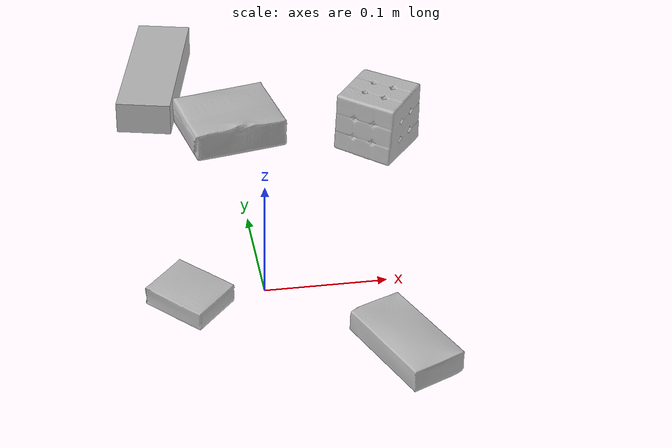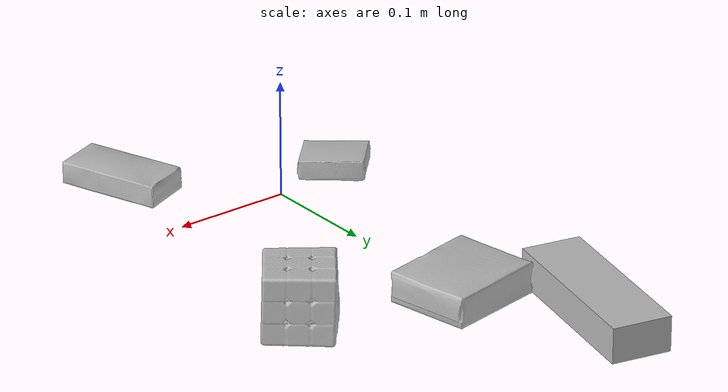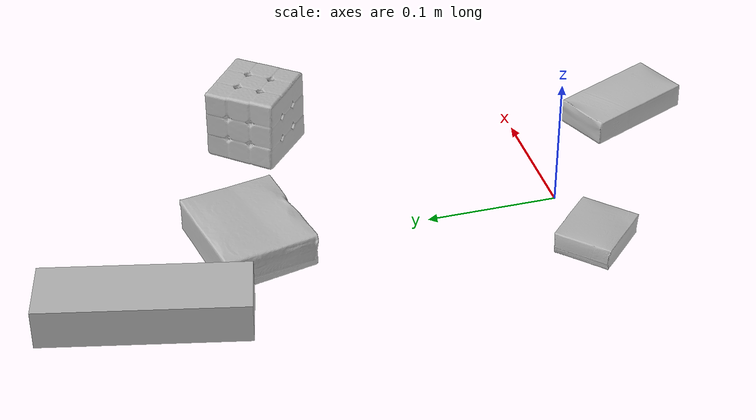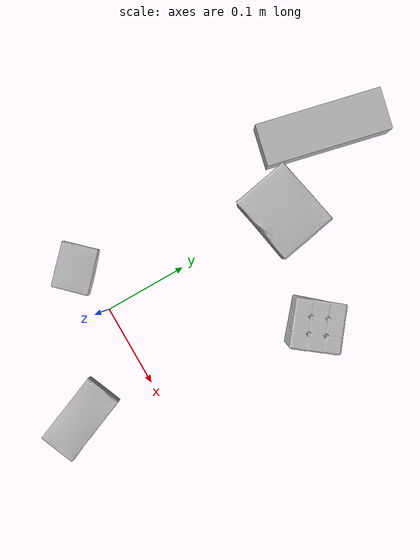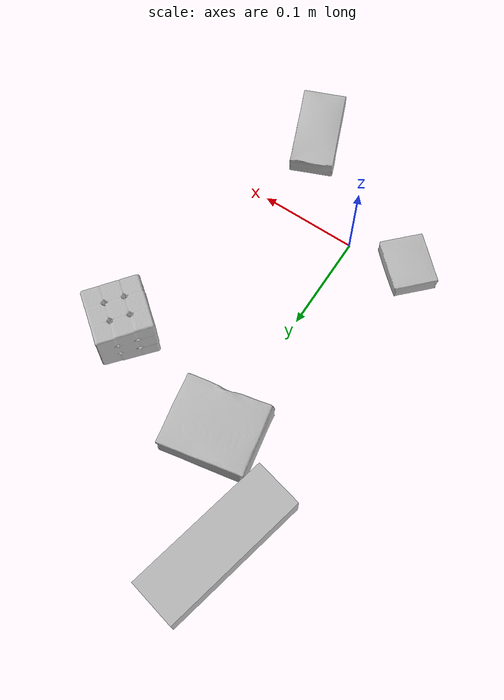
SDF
<sdf version="1.4">
  <world name="default">
    <light name="light1" type="point">
      <pose>0 0 1 0 0 0</pose>
      <diffuse>3 3 3 1</diffuse>
      <specular>3 3 3 1</specular>
    </light>
    <light name="light2" type="point">
      <pose>0 0.5 2 0 0 0</pose>
      <diffuse>1 1 1 1</diffuse>
      <specular>1 1 1 1</specular>
    </light>
    <light name="light3" type="point">
      <pose>0 0.5 2 0 0 0</pose>
      <diffuse>3 3 3 1</diffuse>
      <specular>3 3 3 1</specular>
    </light>
    <scene>
      <ambient>0.7 0.7 0.7</ambient>
    </scene>
    <model name="box1">
      <link name="link_box1">
        <collision name="default">
          <geometry>
            <mesh>
              <uri>model://jenga/collision_meshes/collision.obj</uri>
              <scale>1.0 1.0 1.0</scale>
            </mesh>
          </geometry>
          <surface>
            <friction>
              <ode>
                <mu>0.5</mu>
                <mu2>0.5</mu2>
              </ode>
            </friction>
          <contact>
        <ode>
            <max_vel>0</max_vel>
            <min_depth>0.0001</min_depth>
            <kp>1e8</kp>
        </ode>
    </contact></surface>
        </collision>
        <visual name="default">
          <geometry>
            <mesh>
              <uri>model://jenga/visual_meshes/visual.dae</uri>
              <scale>1.0 1.0 1.0</scale>
            </mesh>
          </geometry>
        </visual>
        <inertial>
          <mass>0.28879067301750183</mass>
          <pose>-2.502855807051674e-07 -0.00010250010382151231 -4.0923401684267446e-05 0.0 -7.342154049184251e-07 0.0</pose>
          <inertia>
            <ixx>7.991539e-05</ixx>
            <iyy>0.00054150453</iyy>
            <izz>0.00057810213</izz>
            <ixy>0</ixy>
            <ixz>0</ixz>
            <iyz>0</iyz>
          </inertia>
        </inertial>
      </link>
      <pose>-0.05920855700969696 0.3220759332180023 0.015000028535723686 6.991872131175569e-06 -2.022398862936551e-07 -1.7958479377646308</pose>
    </model>
    <model name="box2">
      <link name="link_box2">
        <collision name="default">
          <geometry>
            <mesh>
              <uri>model://sugar_box/collision_meshes/collision.obj</uri>
              <scale>0.5 0.5 0.5</scale>
            </mesh>
          </geometry>
          <surface>
            <friction>
              <ode>
                <mu>0.5</mu>
                <mu2>0.5</mu2>
              </ode>
            </friction>
          <contact>
        <ode>
            <max_vel>0</max_vel>
            <min_depth>0.0001</min_depth>
            <kp>1e8</kp>
        </ode>
    </contact></surface>
        </collision>
        <visual name="default">
          <geometry>
            <mesh>
              <uri>model://sugar_box/visual_meshes/visual.dae</uri>
              <scale>0.5 0.5 0.5</scale>
            </mesh>
          </geometry>
        </visual>
        <inertial>
          <mass>0.10389333218336105</mass>
          <pose>0.000517186417710036 1.9245549992774613e-05 -0.00018182402709499002 -0.00040462615469338603 0.0010506637547558321 0.0026153785561208315</pose>
          <inertia>
            <ixx>2.1640906e-05</ixx>
            <iyy>6.994788e-05</iyy>
            <izz>8.373595e-05</izz>
            <ixy>0</ixy>
            <ixz>0</ixz>
            <iyz>0</iyz>
          </inertia>
        </inertial>
      </link>
      <pose>0.09502538293600082 -0.08989185094833374 0.011399305425584316 0.000775434478175325 -0.023432526744645996 -1.182850392413795</pose>
    </model>
    <model name="box3">
      <link name="link_box3">
        <collision name="default">
          <geometry>
            <mesh>
              <uri>model://rubiks_cube/collision_meshes/collision.obj</uri>
              <scale>1.0 1.0 1.0</scale>
            </mesh>
          </geometry>
          <surface>
            <friction>
              <ode>
                <mu>0.5</mu>
                <mu2>0.5</mu2>
              </ode>
            </friction>
          <contact>
        <ode>
            <max_vel>0</max_vel>
            <min_depth>0.0001</min_depth>
            <kp>1e8</kp>
        </ode>
    </contact></surface>
        </collision>
        <visual name="default">
          <geometry>
            <mesh>
              <uri>model://rubiks_cube/visual_meshes/visual.dae</uri>
              <scale>1.0 1.0 1.0</scale>
            </mesh>
          </geometry>
        </visual>
        <inertial>
          <mass>0.21973572671413422</mass>
          <pose>2.6721041649580002e-05 5.256966323941015e-05 -7.264316082000732e-06 -0.054673783840129137 -0.09814154164948871 -0.03445565380518822</pose>
          <inertia>
            <ixx>0.00012141874</ixx>
            <iyy>0.000120852514</iyy>
            <izz>0.00012242487</izz>
            <ixy>0</ixy>
            <ixz>0</ixz>
            <iyz>0</iyz>
          </inertia>
        </inertial>
      </link>
      <pose>0.13315455615520477 0.20048226416110992 0.028678979724645615 -3.444395154842212e-06 -8.677068848532873e-07 0.9007773185423816</pose>
    </model>
    <model name="box4">
      <link name="link_box4">
        <collision name="default">
          <geometry>
            <mesh>
              <uri>model://pudding_box/collision_meshes/collision.obj</uri>
              <scale>0.5 0.5 0.5</scale>
            </mesh>
          </geometry>
          <surface>
            <friction>
              <ode>
                <mu>0.5</mu>
                <mu2>0.5</mu2>
              </ode>
            </friction>
          <contact>
        <ode>
            <max_vel>0</max_vel>
            <min_depth>0.0001</min_depth>
            <kp>1e8</kp>
        </ode>
    </contact></surface>
        </collision>
        <visual name="default">
          <geometry>
            <mesh>
              <uri>model://pudding_box/visual_meshes/visual.dae</uri>
              <scale>0.5 0.5 0.5</scale>
            </mesh>
          </geometry>
        </visual>
        <inertial>
          <mass>0.0391676165163517</mass>
          <pose>0.00024474109522998333 0.00040339428232982755 -0.0002594413817860186 0.005213101313254789 -0.0066037982630024914 0.020079830751203582</pose>
          <inertia>
            <ixx>1.1069244e-05</ixx>
            <iyy>7.447467e-06</iyy>
            <izz>1.634663e-05</izz>
            <ixy>0</ixy>
            <ixz>0</ixz>
            <iyz>0</iyz>
          </inertia>
        </inertial>
      </link>
      <pose>-0.060897741466760635 -0.00885505136102438 0.009862905368208885 0.02234817319512637 -0.011391968629031034 0.8069086937226834</pose>
    </model>
    <model name="box5">
      <link name="link_box5">
        <collision name="default">
          <geometry>
            <mesh>
              <uri>model://gelatin_box/collision_meshes/collision.obj</uri>
              <scale>1.0 1.0 1.0</scale>
            </mesh>
          </geometry>
          <surface>
            <friction>
              <ode>
                <mu>0.5</mu>
                <mu2>0.5</mu2>
              </ode>
            </friction>
          <contact>
        <ode>
            <max_vel>0</max_vel>
            <min_depth>0.0001</min_depth>
            <kp>1e8</kp>
        </ode>
    </contact></surface>
        </collision>
        <visual name="default">
          <geometry>
            <mesh>
              <uri>model://gelatin_box/visual_meshes/visual.dae</uri>
              <scale>1.0 1.0 1.0</scale>
            </mesh>
          </geometry>
        </visual>
        <inertial>
          <mass>0.24157556891441345</mass>
          <pose>0.0004319618456065655 0.00011156872642459348 -0.0003640321083366871 -0.0010503718658393805 -0.0047558177571565665 0.016440565059328244</pose>
          <inertia>
            <ixx>0.00017053263</ixx>
            <iyy>0.00012181056</iyy>
            <izz>0.00025958868</izz>
            <ixy>0</ixy>
            <ixz>0</ixz>
            <iyz>0</iyz>
          </inertia>
        </inertial>
      </link>
      <pose>0.0018971615936607122 0.23527070879936218 0.015186003409326077 0.004144271133211508 -0.00540896823487528 -1.3873201128141865</pose>
    </model>
  <physics type="ode">
      <max_contacts>50</max_contacts>
      <ode>
        <solver>
          <type>quick</type>
          <iters>75</iters>
        </solver>
        <constraints>
          <contact_max_correcting_vel>0</contact_max_correcting_vel>
          <contact_surface_layer>0</contact_surface_layer>
        </constraints>
      </ode>
    </physics></world>
</sdf>
